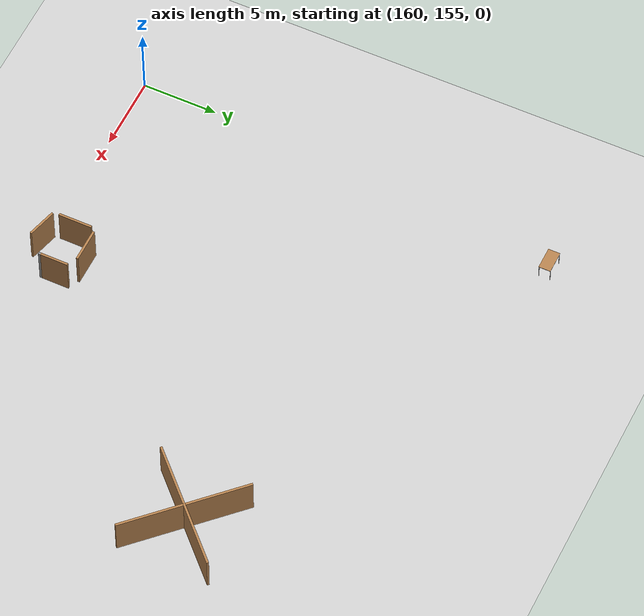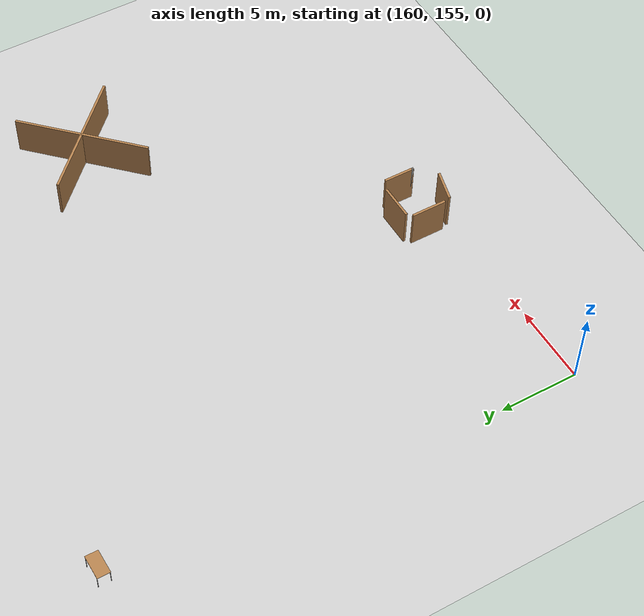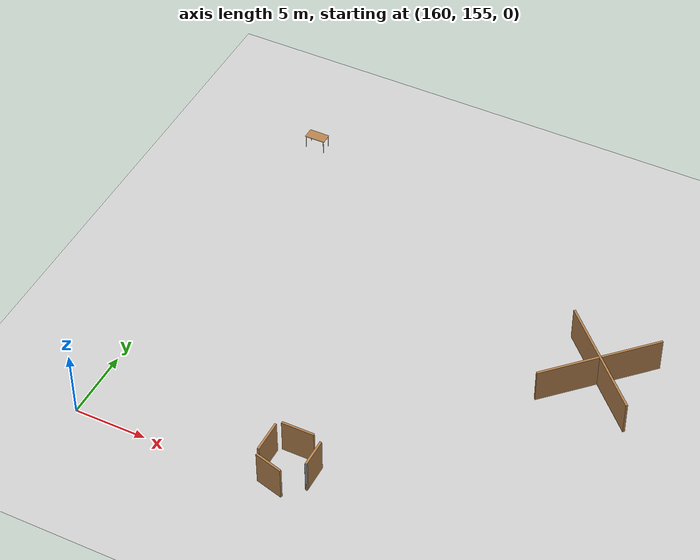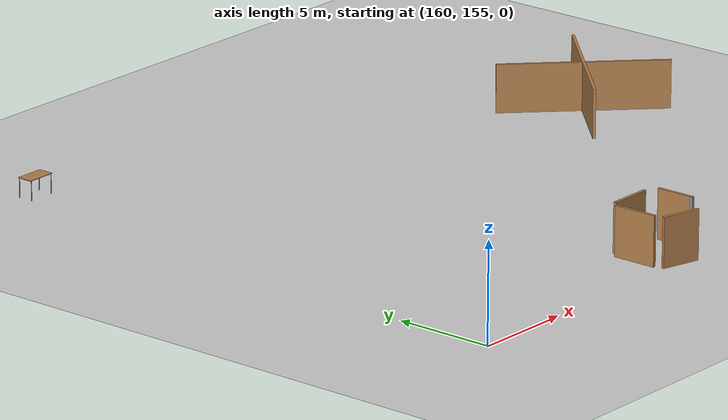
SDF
<sdf version="1.5">
 <world name="default">
  <model name="ground_plane">
   <static>1</static>
   <link name="link">
    <collision name="collision">
     <geometry><plane><normal>0 0 1</normal><size>100 100</size></plane></geometry>
     <surface><friction><ode><mu>100</mu><mu2>50</mu2></ode></friction></surface>
    </collision>
    <visual name="visual">
     <cast_shadows>0</cast_shadows>
     <geometry><plane><normal>0 0 1</normal><size>100 100</size></plane></geometry>
     <material>
      <script><uri>file://media/materials/scripts/gazebo.material</uri><name>Gazebo/Grey</name></script>
     </material>
    </visual>
   </link>
  </model>
  <model name="obs1_3">
   <pose>174.457 156.42 0 0 -0 0</pose>
   <link name="Wall_10">
    <collision name="Wall_10_Collision">
     <geometry><box><size>2 0.15 2.5</size></box></geometry>
     <pose>0 0 1.25 0 -0 0</pose>
    </collision>
    <visual name="Wall_10_Visual">
     <pose>0 0 1.25 0 -0 0</pose>
     <geometry><box><size>2 0.15 2.5</size></box></geometry>
     <material>
      <script><uri>file://media/materials/scripts/gazebo.material</uri><name>Gazebo/Wood</name></script>
      <ambient>1 1 1 1</ambient>
     </material>
    </visual>
    <pose>-0.505188 -1.46687 0 0 0 -0.261799</pose>
   </link>
   <link name="Wall_2">
    <collision name="Wall_2_Collision">
     <geometry><box><size>2.25 0.15 2.5</size></box></geometry>
     <pose>0 0 1.25 0 -0 0</pose>
    </collision>
    <visual name="Wall_2_Visual">
     <pose>0 0 1.25 0 -0 0</pose>
     <geometry><box><size>2.25 0.15 2.5</size></box></geometry>
     <material>
      <script><uri>file://media/materials/scripts/gazebo.material</uri><name>Gazebo/Wood</name></script>
      <ambient>1 1 1 1</ambient>
     </material>
    </visual>
    <pose>-1.58039 0.313508 0 0 0 -1.5708</pose>
   </link>
   <link name="Wall_5">
    <collision name="Wall_5_Collision">
     <geometry><box><size>2.25 0.15 2.5</size></box></geometry>
     <pose>0 0 1.25 0 -0 0</pose>
    </collision>
    <visual name="Wall_5_Visual">
     <pose>0 0 1.25 0 -0 0</pose>
     <geometry><box><size>2.25 0.15 2.5</size></box></geometry>
     <material>
      <script><uri>file://media/materials/scripts/gazebo.material</uri><name>Gazebo/Wood</name></script>
      <ambient>1 1 1 1</ambient>
     </material>
    </visual>
    <pose>-0.185262 1.72313 0 0 -0 0</pose>
   </link>
   <link name="Wall_7">
    <collision name="Wall_7_Collision">
     <geometry><box><size>2 0.15 2.5</size></box></geometry>
     <pose>0 0 1.25 0 -0 0</pose>
    </collision>
    <visual name="Wall_7_Visual">
     <pose>0 0 1.25 0 -0 0</pose>
     <geometry><box><size>2 0.15 2.5</size></box></geometry>
     <material>
      <script><uri>file://media/materials/scripts/gazebo.material</uri><name>Gazebo/Wood</name></script>
      <ambient>1 1 1 1</ambient>
     </material>
    </visual>
    <pose>1.58039 0.398833 0 0 0 -1.5708</pose>
   </link>
   <link name="Wall_8">
    <collision name="Wall_8_Collision">
     <geometry><box><size>0.15 0.15 2.5</size></box></geometry>
     <pose>0 0 1.25 0 -0 0</pose>
    </collision>
    <visual name="Wall_8_Visual">
     <pose>0 0 1.25 0 -0 0</pose>
     <geometry><box><size>0.15 0.15 2.5</size></box></geometry>
     <material>
      <script><uri>file://media/materials/scripts/gazebo.material</uri><name>Gazebo/Grey</name></script>
      <ambient>1 1 1 1</ambient>
     </material>
    </visual>
    <pose>1.58039 -0.526167 0 0 -0 0</pose>
   </link>
   <static>1</static>
  </model>
  <model name="obs3_6">
   <pose>188.565 172 0 0 -0 0</pose>
   <link name="Wall_0">
    <collision name="Wall_0_Collision">
     <geometry><box><size>8.63528 0.15 2.5</size></box></geometry>
     <pose>0 0 1.25 0 -0 0</pose>
    </collision>
    <visual name="Wall_0_Visual">
     <pose>0 0 1.25 0 -0 0</pose>
     <geometry><box><size>8.63528 0.15 2.5</size></box></geometry>
     <material>
      <script><uri>file://media/materials/scripts/gazebo.material</uri><name>Gazebo/Wood</name></script>
      <ambient>1 1 1 1</ambient>
     </material>
    </visual>
    <pose>0 0 0 0 0 -0.785398</pose>
   </link>
   <link name="Wall_2">
    <collision name="Wall_2_Collision">
     <geometry><box><size>8.63528 0.15 2.5</size></box></geometry>
     <pose>0 0 1.25 0 -0 0</pose>
    </collision>
    <visual name="Wall_2_Visual">
     <pose>0 0 1.25 0 -0 0</pose>
     <geometry><box><size>8.63528 0.15 2.5</size></box></geometry>
     <material>
      <script><uri>file://media/materials/scripts/gazebo.material</uri><name>Gazebo/Wood</name></script>
      <ambient>1 1 1 1</ambient>
     </material>
    </visual>
    <pose>0 0 0 0 0 -2.35619</pose>
   </link>
   <static>1</static>
  </model>
  <model name="table">
   <static>1</static>
   <link name="link">
    <collision name="surface">
     <pose>0 0 1 0 -0 0</pose>
     <geometry><box><size>1.5 0.8 0.03</size></box></geometry>
     <surface><friction><ode><mu>0.6</mu><mu2>0.6</mu2></ode></friction></surface>
    </collision>
    <visual name="visual1">
     <pose>0 0 1 0 -0 0</pose>
     <geometry><box><size>1.5 0.8 0.03</size></box></geometry>
     <material>
      <script><uri>file://media/materials/scripts/gazebo.material</uri><name>Gazebo/Wood</name></script>
     </material>
    </visual>
    <collision name="front_left_leg">
     <pose>0.68 0.38 0.5 0 -0 0</pose>
     <geometry><cylinder><radius>0.02</radius><length>1</length></cylinder></geometry>
    </collision>
    <visual name="front_left_leg">
     <pose>0.68 0.38 0.5 0 -0 0</pose>
     <geometry><cylinder><radius>0.02</radius><length>1</length></cylinder></geometry>
     <material>
      <script><uri>file://media/materials/scripts/gazebo.material</uri><name>Gazebo/Grey</name></script>
     </material>
    </visual>
    <collision name="front_right_leg">
     <pose>0.68 -0.38 0.5 0 -0 0</pose>
     <geometry><cylinder><radius>0.02</radius><length>1</length></cylinder></geometry>
    </collision>
    <visual name="front_right_leg">
     <pose>0.68 -0.38 0.5 0 -0 0</pose>
     <geometry><cylinder><radius>0.02</radius><length>1</length></cylinder></geometry>
     <material>
      <script><uri>file://media/materials/scripts/gazebo.material</uri><name>Gazebo/Grey</name></script>
     </material>
    </visual>
    <collision name="back_right_leg">
     <pose>-0.68 -0.38 0.5 0 -0 0</pose>
     <geometry><cylinder><radius>0.02</radius><length>1</length></cylinder></geometry>
    </collision>
    <visual name="back_right_leg">
     <pose>-0.68 -0.38 0.5 0 -0 0</pose>
     <geometry><cylinder><radius>0.02</radius><length>1</length></cylinder></geometry>
     <material>
      <script><uri>file://media/materials/scripts/gazebo.material</uri><name>Gazebo/Grey</name></script>
     </material>
    </visual>
    <collision name="back_left_leg">
     <pose>-0.68 0.38 0.5 0 -0 0</pose>
     <geometry><cylinder><radius>0.02</radius><length>1</length></cylinder></geometry>
    </collision>
    <visual name="back_left_leg">
     <pose>-0.68 0.38 0.5 0 -0 0</pose>
     <geometry><cylinder><radius>0.02</radius><length>1</length></cylinder></geometry>
     <material>
      <script><uri>file://media/materials/scripts/gazebo.material</uri><name>Gazebo/Grey</name></script>
     </material>
    </visual>
   </link>
   <pose>162 184 0 0 -0 0</pose>
  </model>
 </world>
</sdf>
